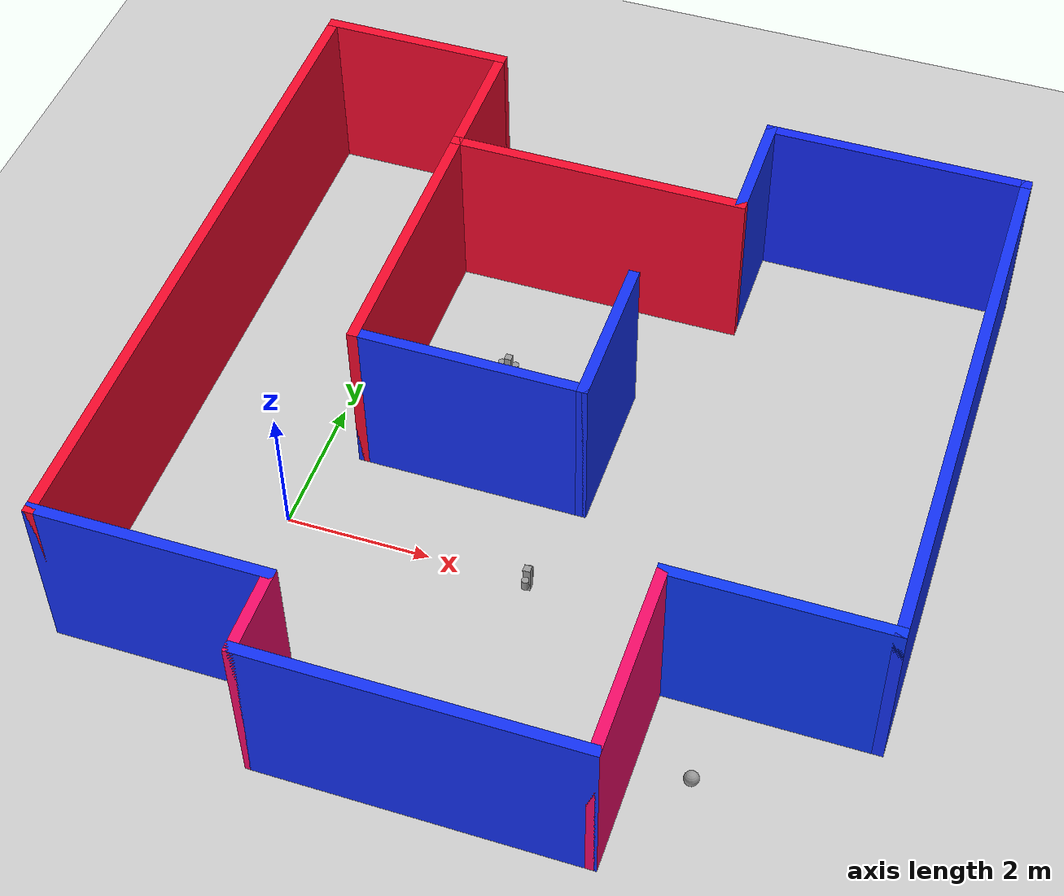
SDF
<sdf version="1.6">
 <world name="default">
  <plugin name="welcome_message" filename="libwelcome_message.so"/>
  <light name="sun" type="directional">
   <pose>0 0 10 0 -0 0</pose>
   <diffuse>0.8 0.8 0.8 1</diffuse>
   <specular>0.1 0.1 0.1 1</specular>
   <attenuation>
    <range>1000</range>
    <constant>0.9</constant>
    <linear>0.01</linear>
    <quadratic>0.001</quadratic>
   </attenuation>
   <direction>-0.5 0.5 -1</direction>
  </light>
  <model name="ground_plane">
   <static>1</static>
   <link name="link">
    <collision name="collision">
     <geometry><plane><normal>0 0 1</normal><size>100 100</size></plane></geometry>
     <surface><friction><ode><mu>100</mu><mu2>50</mu2></ode></friction></surface>
    </collision>
    <visual name="visual">
     <cast_shadows>0</cast_shadows>
     <geometry><plane><normal>0 0 1</normal><size>100 100</size></plane></geometry>
     <material>
      <script><uri>file://media/materials/scripts/gazebo.material</uri><name>Gazebo/Grey</name></script>
     </material>
    </visual>
   </link>
  </model>
  <gravity>0 0 -9.8</gravity>
  <magnetic_field>6e-06 2.3e-05 -4.2e-05</magnetic_field>
  <atmosphere type="adiabatic"/>
  <physics name="default_physics" default="0" type="ode">
   <max_step_size>0.001</max_step_size>
   <real_time_factor>1</real_time_factor>
   <real_time_update_rate>1000</real_time_update_rate>
  </physics>
  <scene><ambient>0.4 0.4 0.4 1</ambient><background>0.7 0.7 0.7 1</background><shadows>1</shadows></scene>
  <spherical_coordinates>
   <surface_model>EARTH_WGS84</surface_model>
   <latitude_deg>0</latitude_deg>
   <longitude_deg>0</longitude_deg>
   <elevation>0</elevation>
   <heading_deg>0</heading_deg>
  </spherical_coordinates>
  <model name="Building">
   <pose>3.13033 1.69817 0 0 -0 0</pose>
   <link name="Wall_1">
    <collision name="Wall_1_Collision">
     <geometry><box><size>4.5 0.15 2.5</size></box></geometry>
     <pose>0 0 1.25 0 -0 0</pose>
    </collision>
    <visual name="Wall_1_Visual">
     <pose>0 0 1.25 0 -0 0</pose>
     <geometry><box><size>4.5 0.15 2.5</size></box></geometry>
     <material>
      <script><uri>file://media/materials/scripts/gazebo.material</uri><name>Gazebo/Grey</name></script>
      <ambient>0.0705882 0.188235 0.956863 1</ambient>
     </material>
    </visual>
    <pose>0.125 -5.35 0 0 -0 0</pose>
   </link>
   <link name="Wall_10">
    <collision name="Wall_10_Collision">
     <geometry><box><size>9.75 0.15 2.5</size></box></geometry>
     <pose>0 0 1.25 0 -0 0</pose>
    </collision>
    <visual name="Wall_10_Visual">
     <pose>0 0 1.25 0 -0 0</pose>
     <geometry><box><size>9.75 0.15 2.5</size></box></geometry>
     <material>
      <script><uri>file://media/materials/scripts/gazebo.material</uri><name>Gazebo/Grey</name></script>
      <ambient>0.956863 0.0352941 0.172549 1</ambient>
     </material>
    </visual>
    <pose>-5.15 0.55 0 0 0 -1.5708</pose>
   </link>
   <link name="Wall_11">
    <collision name="Wall_11_Collision">
     <geometry><box><size>3.25 0.15 2.5</size></box></geometry>
     <pose>0 0 1.25 0 -0 0</pose>
    </collision>
    <visual name="Wall_11_Visual">
     <pose>0 0 1.25 0 -0 0</pose>
     <geometry><box><size>3.25 0.15 2.5</size></box></geometry>
     <material>
      <script><uri>file://media/materials/scripts/gazebo.material</uri><name>Gazebo/Grey</name></script>
      <ambient>0.0705882 0.188235 0.956863 1</ambient>
     </material>
    </visual>
    <pose>-3.6 -4.25 0 0 -0 0</pose>
   </link>
   <link name="Wall_13">
    <collision name="Wall_13_Collision">
     <geometry><box><size>1.25 0.15 2.5</size></box></geometry>
     <pose>0 0 1.25 0 -0 0</pose>
    </collision>
    <visual name="Wall_13_Visual">
     <pose>0 0 1.25 0 -0 0</pose>
     <geometry><box><size>1.25 0.15 2.5</size></box></geometry>
     <material>
      <script><uri>file://media/materials/scripts/gazebo.material</uri><name>Gazebo/Grey</name></script>
      <ambient>0.956863 0.0392157 0.407843 1</ambient>
     </material>
    </visual>
    <pose>-2.05 -4.8 0 0 0 -1.5708</pose>
   </link>
   <link name="Wall_15">
    <collision name="Wall_15_Collision">
     <geometry><box><size>4 0.15 2.5</size></box></geometry>
     <pose>0 0 1.25 0 -0 0</pose>
    </collision>
    <visual name="Wall_15_Visual">
     <pose>0 0 1.25 0 -0 0</pose>
     <geometry><box><size>4 0.15 2.5</size></box></geometry>
     <material>
      <script><uri>file://media/materials/scripts/gazebo.material</uri><name>Gazebo/Grey</name></script>
      <ambient>0.956863 0.0352941 0.172549 1</ambient>
     </material>
    </visual>
    <pose>-2.55 1.575 0 0 0 -1.5708</pose>
   </link>
   <link name="Wall_16">
    <collision name="Wall_16_Collision">
     <geometry><box><size>3.25 0.15 2.5</size></box></geometry>
     <pose>0 0 1.25 0 -0 0</pose>
    </collision>
    <visual name="Wall_16_Visual">
     <pose>0 0 1.25 0 -0 0</pose>
     <geometry><box><size>3.25 0.15 2.5</size></box></geometry>
     <material>
      <script><uri>file://media/materials/scripts/gazebo.material</uri><name>Gazebo/Grey</name></script>
      <ambient>0.0705882 0.188235 0.956863 1</ambient>
     </material>
    </visual>
    <pose>-1 -0.35 0 0 -0 0</pose>
   </link>
   <link name="Wall_17">
    <collision name="Wall_17_Collision">
     <geometry><box><size>2.25 0.15 2.5</size></box></geometry>
     <pose>0 0 1.25 0 -0 0</pose>
    </collision>
    <visual name="Wall_17_Visual">
     <pose>0 0 1.25 0 -0 0</pose>
     <geometry><box><size>2.25 0.15 2.5</size></box></geometry>
     <material>
      <script><uri>file://media/materials/scripts/gazebo.material</uri><name>Gazebo/Grey</name></script>
      <ambient>0.0705882 0.188235 0.956863 1</ambient>
     </material>
    </visual>
    <pose>0.55 0.7 0 0 -0 1.5708</pose>
   </link>
   <link name="Wall_2">
    <collision name="Wall_2_Collision">
     <geometry><box><size>2.75 0.15 2.5</size></box></geometry>
     <pose>0 0 1.25 0 -0 0</pose>
    </collision>
    <visual name="Wall_2_Visual">
     <pose>0 0 1.25 0 -0 0</pose>
     <geometry><box><size>2.75 0.15 2.5</size></box></geometry>
     <material>
      <script><uri>file://media/materials/scripts/gazebo.material</uri><name>Gazebo/Grey</name></script>
      <ambient>0.956863 0.0392157 0.407843 1</ambient>
     </material>
    </visual>
    <pose>2.3 -4.05 0 0 -0 1.5708</pose>
   </link>
   <link name="Wall_3">
    <collision name="Wall_3_Collision">
     <geometry><box><size>3 0.15 2.5</size></box></geometry>
     <pose>0 0 1.25 0 -0 0</pose>
    </collision>
    <visual name="Wall_3_Visual">
     <pose>0 0 1.25 0 -0 0</pose>
     <geometry><box><size>3 0.15 2.5</size></box></geometry>
     <material>
      <script><uri>file://media/materials/scripts/gazebo.material</uri><name>Gazebo/Grey</name></script>
      <ambient>0.0431373 0.211765 0.956863 1</ambient>
     </material>
    </visual>
    <pose>3.725 -2.75 0 0 -0 0</pose>
   </link>
   <link name="Wall_4">
    <collision name="Wall_4_Collision">
     <geometry><box><size>8 0.15 2.5</size></box></geometry>
     <pose>0 0 1.25 0 -0 0</pose>
    </collision>
    <visual name="Wall_4_Visual">
     <pose>0 0 1.25 0 -0 0</pose>
     <geometry><box><size>8 0.15 2.5</size></box></geometry>
     <material>
      <script><uri>file://media/materials/scripts/gazebo.material</uri><name>Gazebo/Grey</name></script>
      <ambient>0.0705882 0.188235 0.956863 1</ambient>
     </material>
    </visual>
    <pose>5.15 1.175 0 0 -0 1.5708</pose>
   </link>
   <link name="Wall_5">
    <collision name="Wall_5_Collision">
     <geometry><box><size>3.75 0.15 2.5</size></box></geometry>
     <pose>0 0 1.25 0 -0 0</pose>
    </collision>
    <visual name="Wall_5_Visual">
     <pose>0 0 1.25 0 -0 0</pose>
     <geometry><box><size>3.75 0.15 2.5</size></box></geometry>
     <material>
      <script><uri>file://media/materials/scripts/gazebo.material</uri><name>Gazebo/Grey</name></script>
      <ambient>0.0705882 0.156863 0.956863 1</ambient>
     </material>
    </visual>
    <pose>3.35 5.1 0 0 -0 3.14159</pose>
   </link>
   <link name="Wall_6">
    <collision name="Wall_6_Collision">
     <geometry><box><size>1.75 0.15 2.5</size></box></geometry>
     <pose>0 0 1.25 0 -0 0</pose>
    </collision>
    <visual name="Wall_6_Visual">
     <pose>0 0 1.25 0 -0 0</pose>
     <geometry><box><size>1.75 0.15 2.5</size></box></geometry>
     <material>
      <script><uri>file://media/materials/scripts/gazebo.material</uri><name>Gazebo/Grey</name></script>
      <ambient>0.0705882 0.188235 0.956863 1</ambient>
     </material>
    </visual>
    <pose>1.55 4.3 0 0 0 -1.5708</pose>
   </link>
   <link name="Wall_7">
    <collision name="Wall_7_Collision">
     <geometry><box><size>4.25 0.15 2.5</size></box></geometry>
     <pose>0 0 1.25 0 -0 0</pose>
    </collision>
    <visual name="Wall_7_Visual">
     <pose>0 0 1.25 0 -0 0</pose>
     <geometry><box><size>4.25 0.15 2.5</size></box></geometry>
     <material>
      <script><uri>file://media/materials/scripts/gazebo.material</uri><name>Gazebo/Grey</name></script>
      <ambient>0.956863 0.0352941 0.172549 1</ambient>
     </material>
    </visual>
    <pose>-0.5 3.5 0 0 -0 3.14159</pose>
   </link>
   <link name="Wall_8">
    <collision name="Wall_8_Collision">
     <geometry><box><size>2 0.15 2.5</size></box></geometry>
     <pose>0 0 1.25 0 -0 0</pose>
    </collision>
    <visual name="Wall_8_Visual">
     <pose>0 0 1.25 0 -0 0</pose>
     <geometry><box><size>2 0.15 2.5</size></box></geometry>
     <material>
      <script><uri>file://media/materials/scripts/gazebo.material</uri><name>Gazebo/Grey</name></script>
      <ambient>0.956863 0.0352941 0.172549 1</ambient>
     </material>
    </visual>
    <pose>-2.55 4.425 0 0 -0 1.5708</pose>
   </link>
   <link name="Wall_9">
    <collision name="Wall_9_Collision">
     <geometry><box><size>2.75 0.15 2.5</size></box></geometry>
     <pose>0 0 1.25 0 -0 0</pose>
    </collision>
    <visual name="Wall_9_Visual">
     <pose>0 0 1.25 0 -0 0</pose>
     <geometry><box><size>2.75 0.15 2.5</size></box></geometry>
     <material>
      <script><uri>file://media/materials/scripts/gazebo.material</uri><name>Gazebo/Grey</name></script>
      <ambient>0.956863 0.0352941 0.172549 1</ambient>
     </material>
    </visual>
    <pose>-3.85 5.35 0 0 -0 3.14159</pose>
   </link>
   <static>1</static>
  </model>
  <model name="HumanoidRobot">
   <link name="link_0">
    <inertial>
     <mass>1</mass>
     <inertia>
      <ixx>0.166667</ixx>
      <ixy>0</ixy>
      <ixz>0</ixz>
      <iyy>0.166667</iyy>
      <iyz>0</iyz>
      <izz>0.166667</izz>
     </inertia>
    </inertial>
    <visual name="visual">
     <geometry><box><size>0.1 0.1 0.4</size></box></geometry>
     <material>
      <lighting>1</lighting>
      <script><uri>file://media/materials/scripts/gazebo.material</uri><name>Gazebo/Grey</name></script>
      <ambient>0.3 0.3 0.3 1</ambient>
      <diffuse>0.7 0.7 0.7 1</diffuse>
      <specular>0.01 0.01 0.01 1</specular>
      <emissive>0 0 0 1</emissive>
      <shader type="vertex"><normal_map>__default__</normal_map></shader>
     </material>
    </visual>
    <collision name="collision">
     <geometry><box><size>0.1 0.1 0.4</size></box></geometry>
     <surface>
      <friction>
       <ode><mu>1</mu><mu2>1</mu2><fdir1>0 0 0</fdir1><slip1>0</slip1><slip2>0</slip2></ode>
       <torsional>
        <coefficient>1</coefficient>
        <patch_radius>0</patch_radius>
        <surface_radius>0</surface_radius>
        <use_patch_radius>1</use_patch_radius>
        <ode><slip>0</slip></ode>
       </torsional>
      </friction>
      <bounce><restitution_coefficient>0</restitution_coefficient><threshold>1e+06</threshold></bounce>
      <contact>
       <collide_without_contact>0</collide_without_contact>
       <collide_without_contact_bitmask>1</collide_without_contact_bitmask>
       <collide_bitmask>1</collide_bitmask>
       <ode>
        <soft_cfm>0</soft_cfm>
        <soft_erp>0.2</soft_erp>
        <kp>1e+13</kp>
        <kd>1</kd>
        <max_vel>0.01</max_vel>
        <min_depth>0</min_depth>
       </ode>
       <bullet>
        <split_impulse>1</split_impulse>
        <split_impulse_penetration_threshold>-0.01</split_impulse_penetration_threshold>
        <soft_cfm>0</soft_cfm>
        <soft_erp>0.2</soft_erp>
        <kp>1e+13</kp>
        <kd>1</kd>
       </bullet>
      </contact>
     </surface>
    </collision>
   </link>
   <link name="link_1">
    <pose>0 -0.1 0 0 -0 0</pose>
    <inertial>
     <mass>1</mass>
     <inertia><ixx>0.145833</ixx><ixy>0</ixy><ixz>0</ixz><iyy>0.145833</iyy><iyz>0</iyz><izz>0.125</izz></inertia>
    </inertial>
    <visual name="visual">
     <geometry><cylinder><radius>0.05</radius><length>0.15</length></cylinder></geometry>
     <material>
      <lighting>1</lighting>
      <script><uri>file://media/materials/scripts/gazebo.material</uri><name>Gazebo/Grey</name></script>
      <ambient>0.3 0.3 0.3 1</ambient>
      <diffuse>0.7 0.7 0.7 1</diffuse>
      <specular>0.01 0.01 0.01 1</specular>
      <emissive>0 0 0 1</emissive>
      <shader type="vertex"><normal_map>__default__</normal_map></shader>
     </material>
    </visual>
    <collision name="collision">
     <geometry><cylinder><radius>0.05</radius><length>0.15</length></cylinder></geometry>
     <surface>
      <friction>
       <ode><mu>1</mu><mu2>1</mu2><fdir1>0 0 0</fdir1><slip1>0</slip1><slip2>0</slip2></ode>
       <torsional>
        <coefficient>1</coefficient>
        <patch_radius>0</patch_radius>
        <surface_radius>0</surface_radius>
        <use_patch_radius>1</use_patch_radius>
        <ode><slip>0</slip></ode>
       </torsional>
      </friction>
      <bounce><restitution_coefficient>0</restitution_coefficient><threshold>1e+06</threshold></bounce>
      <contact>
       <collide_without_contact>0</collide_without_contact>
       <collide_without_contact_bitmask>1</collide_without_contact_bitmask>
       <collide_bitmask>1</collide_bitmask>
       <ode>
        <soft_cfm>0</soft_cfm>
        <soft_erp>0.2</soft_erp>
        <kp>1e+13</kp>
        <kd>1</kd>
        <max_vel>0.01</max_vel>
        <min_depth>0</min_depth>
       </ode>
       <bullet>
        <split_impulse>1</split_impulse>
        <split_impulse_penetration_threshold>-0.01</split_impulse_penetration_threshold>
        <soft_cfm>0</soft_cfm>
        <soft_erp>0.2</soft_erp>
        <kp>1e+13</kp>
        <kd>1</kd>
       </bullet>
      </contact>
     </surface>
    </collision>
   </link>
   <link name="link_1_clone">
    <pose>0 0.1 0 0 -0 0</pose>
    <inertial>
     <mass>1</mass>
     <inertia><ixx>0.145833</ixx><ixy>0</ixy><ixz>0</ixz><iyy>0.145833</iyy><iyz>0</iyz><izz>0.125</izz></inertia>
    </inertial>
    <visual name="visual">
     <geometry><cylinder><radius>0.05</radius><length>0.15</length></cylinder></geometry>
     <material>
      <lighting>1</lighting>
      <script><uri>file://media/materials/scripts/gazebo.material</uri><name>Gazebo/Grey</name></script>
      <ambient>0.3 0.3 0.3 1</ambient>
      <diffuse>0.7 0.7 0.7 1</diffuse>
      <specular>0.01 0.01 0.01 1</specular>
      <emissive>0 0 0 1</emissive>
      <shader type="vertex"><normal_map>__default__</normal_map></shader>
     </material>
    </visual>
    <collision name="collision">
     <geometry><cylinder><radius>0.05</radius><length>0.15</length></cylinder></geometry>
     <surface>
      <friction>
       <ode><mu>1</mu><mu2>1</mu2><fdir1>0 0 0</fdir1><slip1>0</slip1><slip2>0</slip2></ode>
       <torsional>
        <coefficient>1</coefficient>
        <patch_radius>0</patch_radius>
        <surface_radius>0</surface_radius>
        <use_patch_radius>1</use_patch_radius>
        <ode><slip>0</slip></ode>
       </torsional>
      </friction>
      <bounce><restitution_coefficient>0</restitution_coefficient><threshold>1e+06</threshold></bounce>
      <contact>
       <collide_without_contact>0</collide_without_contact>
       <collide_without_contact_bitmask>1</collide_without_contact_bitmask>
       <collide_bitmask>1</collide_bitmask>
       <ode>
        <soft_cfm>0</soft_cfm>
        <soft_erp>0.2</soft_erp>
        <kp>1e+13</kp>
        <kd>1</kd>
        <max_vel>0.01</max_vel>
        <min_depth>0</min_depth>
       </ode>
       <bullet>
        <split_impulse>1</split_impulse>
        <split_impulse_penetration_threshold>-0.01</split_impulse_penetration_threshold>
        <soft_cfm>0</soft_cfm>
        <soft_erp>0.2</soft_erp>
        <kp>1e+13</kp>
        <kd>1</kd>
       </bullet>
      </contact>
     </surface>
    </collision>
   </link>
   <joint name="link_0_JOINT_0" type="revolute">
    <parent>link_0</parent>
    <child>link_1</child>
    <axis>
     <xyz>0 1 0</xyz>
     <use_parent_model_frame>0</use_parent_model_frame>
     <limit>
      <lower>-1.79769e+308</lower>
      <upper>1.79769e+308</upper>
      <effort>-1</effort>
      <velocity>-1</velocity>
     </limit>
     <dynamics>
      <spring_reference>0</spring_reference>
      <spring_stiffness>0</spring_stiffness>
      <damping>0</damping>
     </dynamics>
    </axis>
    <physics>
     <ode><limit><cfm>0</cfm><erp>0.2</erp></limit><suspension><cfm>0</cfm><erp>0.2</erp></suspension></ode>
    </physics>
   </joint>
   <joint name="link_0_JOINT_1" type="revolute">
    <parent>link_0</parent>
    <child>link_1_clone</child>
    <axis>
     <xyz>0 -1 0</xyz>
     <use_parent_model_frame>0</use_parent_model_frame>
     <limit>
      <lower>-1.79769e+308</lower>
      <upper>1.79769e+308</upper>
      <effort>-1</effort>
      <velocity>-1</velocity>
     </limit>
     <dynamics>
      <spring_reference>0</spring_reference>
      <spring_stiffness>0</spring_stiffness>
      <damping>0</damping>
     </dynamics>
    </axis>
    <physics>
     <ode><limit><cfm>0</cfm><erp>0.2</erp></limit><suspension><cfm>0</cfm><erp>0.2</erp></suspension></ode>
    </physics>
   </joint>
   <static>0</static>
   <pose>3.38879 -0.051027 0.19999 0 5e-06 0.010057</pose>
  </model>
  <model name="HumanoidRobot_clone">
   <link name="link_0">
    <inertial>
     <mass>1</mass>
     <inertia>
      <ixx>0.166667</ixx>
      <ixy>0</ixy>
      <ixz>0</ixz>
      <iyy>0.166667</iyy>
      <iyz>0</iyz>
      <izz>0.166667</izz>
     </inertia>
    </inertial>
    <visual name="visual">
     <geometry><box><size>0.1 0.1 0.4</size></box></geometry>
     <material>
      <lighting>1</lighting>
      <script><uri>file://media/materials/scripts/gazebo.material</uri><name>Gazebo/Grey</name></script>
      <ambient>0.3 0.3 0.3 1</ambient>
      <diffuse>0.7 0.7 0.7 1</diffuse>
      <specular>0.01 0.01 0.01 1</specular>
      <emissive>0 0 0 1</emissive>
      <shader type="vertex"><normal_map>__default__</normal_map></shader>
     </material>
    </visual>
    <collision name="collision">
     <geometry><box><size>0.1 0.1 0.4</size></box></geometry>
     <surface>
      <friction>
       <ode><mu>1</mu><mu2>1</mu2><fdir1>0 0 0</fdir1><slip1>0</slip1><slip2>0</slip2></ode>
       <torsional>
        <coefficient>1</coefficient>
        <patch_radius>0</patch_radius>
        <surface_radius>0</surface_radius>
        <use_patch_radius>1</use_patch_radius>
        <ode><slip>0</slip></ode>
       </torsional>
      </friction>
      <bounce><restitution_coefficient>0</restitution_coefficient><threshold>1e+06</threshold></bounce>
      <contact>
       <collide_without_contact>0</collide_without_contact>
       <collide_without_contact_bitmask>1</collide_without_contact_bitmask>
       <collide_bitmask>1</collide_bitmask>
       <ode>
        <soft_cfm>0</soft_cfm>
        <soft_erp>0.2</soft_erp>
        <kp>1e+13</kp>
        <kd>1</kd>
        <max_vel>0.01</max_vel>
        <min_depth>0</min_depth>
       </ode>
       <bullet>
        <split_impulse>1</split_impulse>
        <split_impulse_penetration_threshold>-0.01</split_impulse_penetration_threshold>
        <soft_cfm>0</soft_cfm>
        <soft_erp>0.2</soft_erp>
        <kp>1e+13</kp>
        <kd>1</kd>
       </bullet>
      </contact>
     </surface>
    </collision>
   </link>
   <link name="link_1">
    <pose>0 -0.1 0 0 -0 0</pose>
    <inertial>
     <mass>1</mass>
     <inertia><ixx>0.145833</ixx><ixy>0</ixy><ixz>0</ixz><iyy>0.145833</iyy><iyz>0</iyz><izz>0.125</izz></inertia>
    </inertial>
    <visual name="visual">
     <geometry><cylinder><radius>0.05</radius><length>0.15</length></cylinder></geometry>
     <material>
      <lighting>1</lighting>
      <script><uri>file://media/materials/scripts/gazebo.material</uri><name>Gazebo/Grey</name></script>
      <ambient>0.3 0.3 0.3 1</ambient>
      <diffuse>0.7 0.7 0.7 1</diffuse>
      <specular>0.01 0.01 0.01 1</specular>
      <emissive>0 0 0 1</emissive>
      <shader type="vertex"><normal_map>__default__</normal_map></shader>
     </material>
    </visual>
    <collision name="collision">
     <geometry><cylinder><radius>0.05</radius><length>0.15</length></cylinder></geometry>
     <surface>
      <friction>
       <ode><mu>1</mu><mu2>1</mu2><fdir1>0 0 0</fdir1><slip1>0</slip1><slip2>0</slip2></ode>
       <torsional>
        <coefficient>1</coefficient>
        <patch_radius>0</patch_radius>
        <surface_radius>0</surface_radius>
        <use_patch_radius>1</use_patch_radius>
        <ode><slip>0</slip></ode>
       </torsional>
      </friction>
      <bounce><restitution_coefficient>0</restitution_coefficient><threshold>1e+06</threshold></bounce>
      <contact>
       <collide_without_contact>0</collide_without_contact>
       <collide_without_contact_bitmask>1</collide_without_contact_bitmask>
       <collide_bitmask>1</collide_bitmask>
       <ode>
        <soft_cfm>0</soft_cfm>
        <soft_erp>0.2</soft_erp>
        <kp>1e+13</kp>
        <kd>1</kd>
        <max_vel>0.01</max_vel>
        <min_depth>0</min_depth>
       </ode>
       <bullet>
        <split_impulse>1</split_impulse>
        <split_impulse_penetration_threshold>-0.01</split_impulse_penetration_threshold>
        <soft_cfm>0</soft_cfm>
        <soft_erp>0.2</soft_erp>
        <kp>1e+13</kp>
        <kd>1</kd>
       </bullet>
      </contact>
     </surface>
    </collision>
   </link>
   <link name="link_1_clone">
    <pose>0 0.1 0 0 -0 0</pose>
    <inertial>
     <mass>1</mass>
     <inertia><ixx>0.145833</ixx><ixy>0</ixy><ixz>0</ixz><iyy>0.145833</iyy><iyz>0</iyz><izz>0.125</izz></inertia>
    </inertial>
    <visual name="visual">
     <geometry><cylinder><radius>0.05</radius><length>0.15</length></cylinder></geometry>
     <material>
      <lighting>1</lighting>
      <script><uri>file://media/materials/scripts/gazebo.material</uri><name>Gazebo/Grey</name></script>
      <ambient>0.3 0.3 0.3 1</ambient>
      <diffuse>0.7 0.7 0.7 1</diffuse>
      <specular>0.01 0.01 0.01 1</specular>
      <emissive>0 0 0 1</emissive>
      <shader type="vertex"><normal_map>__default__</normal_map></shader>
     </material>
    </visual>
    <collision name="collision">
     <geometry><cylinder><radius>0.05</radius><length>0.15</length></cylinder></geometry>
     <surface>
      <friction>
       <ode><mu>1</mu><mu2>1</mu2><fdir1>0 0 0</fdir1><slip1>0</slip1><slip2>0</slip2></ode>
       <torsional>
        <coefficient>1</coefficient>
        <patch_radius>0</patch_radius>
        <surface_radius>0</surface_radius>
        <use_patch_radius>1</use_patch_radius>
        <ode><slip>0</slip></ode>
       </torsional>
      </friction>
      <bounce><restitution_coefficient>0</restitution_coefficient><threshold>1e+06</threshold></bounce>
      <contact>
       <collide_without_contact>0</collide_without_contact>
       <collide_without_contact_bitmask>1</collide_without_contact_bitmask>
       <collide_bitmask>1</collide_bitmask>
       <ode>
        <soft_cfm>0</soft_cfm>
        <soft_erp>0.2</soft_erp>
        <kp>1e+13</kp>
        <kd>1</kd>
        <max_vel>0.01</max_vel>
        <min_depth>0</min_depth>
       </ode>
       <bullet>
        <split_impulse>1</split_impulse>
        <split_impulse_penetration_threshold>-0.01</split_impulse_penetration_threshold>
        <soft_cfm>0</soft_cfm>
        <soft_erp>0.2</soft_erp>
        <kp>1e+13</kp>
        <kd>1</kd>
       </bullet>
      </contact>
     </surface>
    </collision>
   </link>
   <joint name="link_0_JOINT_0" type="revolute">
    <parent>link_0</parent>
    <child>link_1</child>
    <axis>
     <xyz>0 1 0</xyz>
     <use_parent_model_frame>0</use_parent_model_frame>
     <limit>
      <lower>-1.79769e+308</lower>
      <upper>1.79769e+308</upper>
      <effort>-1</effort>
      <velocity>-1</velocity>
     </limit>
     <dynamics>
      <spring_reference>0</spring_reference>
      <spring_stiffness>0</spring_stiffness>
      <damping>0</damping>
     </dynamics>
    </axis>
    <physics>
     <ode><limit><cfm>0</cfm><erp>0.2</erp></limit><suspension><cfm>0</cfm><erp>0.2</erp></suspension></ode>
    </physics>
   </joint>
   <joint name="link_0_JOINT_1" type="revolute">
    <parent>link_0</parent>
    <child>link_1_clone</child>
    <axis>
     <xyz>0 -1 0</xyz>
     <use_parent_model_frame>0</use_parent_model_frame>
     <limit>
      <lower>-1.79769e+308</lower>
      <upper>1.79769e+308</upper>
      <effort>-1</effort>
      <velocity>-1</velocity>
     </limit>
     <dynamics>
      <spring_reference>0</spring_reference>
      <spring_stiffness>0</spring_stiffness>
      <damping>0</damping>
     </dynamics>
    </axis>
    <physics>
     <ode><limit><cfm>0</cfm><erp>0.2</erp></limit><suspension><cfm>0</cfm><erp>0.2</erp></suspension></ode>
    </physics>
   </joint>
   <static>0</static>
   <pose>1.94344 3.3624 0.19999 1e-06 -5e-06 1.57618</pose>
  </model>
  <model name="my_ball">
   <link name="link_0">
    <inertial>
     <mass>1</mass>
     <inertia><ixx>0.1</ixx><ixy>0</ixy><ixz>0</ixz><iyy>0.1</iyy><iyz>0</iyz><izz>0.1</izz></inertia>
    </inertial>
    <visual name="visual">
     <geometry><sphere><radius>0.1</radius></sphere></geometry>
     <material>
      <lighting>1</lighting>
      <script><uri>file://media/materials/scripts/gazebo.material</uri><name>Gazebo/Grey</name></script>
      <ambient>1 1 1 1</ambient>
      <diffuse>0.7 0.7 0.7 1</diffuse>
      <specular>0.01 0.01 0.01 1</specular>
      <emissive>0 0 0 1</emissive>
      <shader type="vertex"><normal_map>__default__</normal_map></shader>
     </material>
    </visual>
    <collision name="collision">
     <geometry><sphere><radius>0.1</radius></sphere></geometry>
     <surface>
      <friction>
       <ode><mu>1</mu><mu2>1</mu2><fdir1>0 0 0</fdir1><slip1>0</slip1><slip2>0</slip2></ode>
       <torsional>
        <coefficient>1</coefficient>
        <patch_radius>0</patch_radius>
        <surface_radius>0</surface_radius>
        <use_patch_radius>1</use_patch_radius>
        <ode><slip>0</slip></ode>
       </torsional>
      </friction>
      <bounce><restitution_coefficient>0</restitution_coefficient><threshold>1e+06</threshold></bounce>
      <contact>
       <collide_without_contact>0</collide_without_contact>
       <collide_without_contact_bitmask>1</collide_without_contact_bitmask>
       <collide_bitmask>1</collide_bitmask>
       <ode>
        <soft_cfm>0</soft_cfm>
        <soft_erp>0.2</soft_erp>
        <kp>1e+13</kp>
        <kd>1</kd>
        <max_vel>0.01</max_vel>
        <min_depth>0</min_depth>
       </ode>
       <bullet>
        <split_impulse>1</split_impulse>
        <split_impulse_penetration_threshold>-0.01</split_impulse_penetration_threshold>
        <soft_cfm>0</soft_cfm>
        <soft_erp>0.2</soft_erp>
        <kp>1e+13</kp>
        <kd>1</kd>
       </bullet>
      </contact>
     </surface>
    </collision>
   </link>
   <static>0</static>
   <pose>6.22444 -2.21624 0.1 0 -0 0</pose>
  </model>
 </world>
</sdf>
